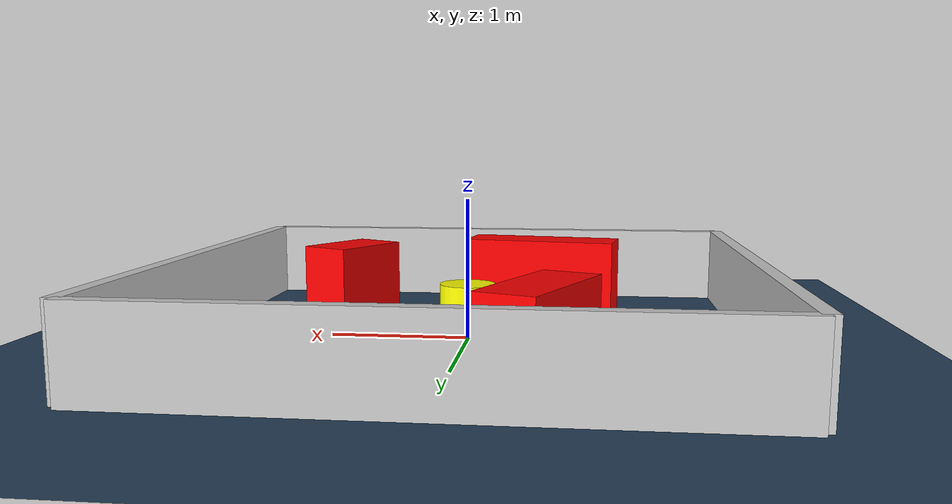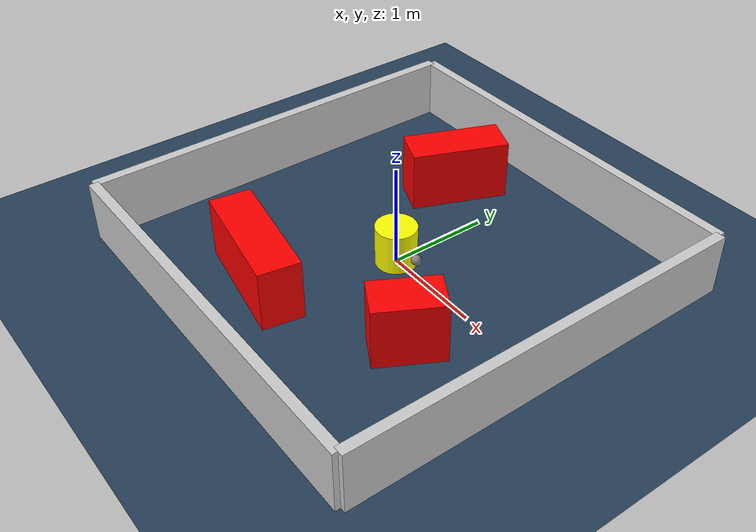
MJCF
<?xml version="1.0" ?>
<mujoco model="generated_environment">
  <option timestep="0.01" integrator="RK4" cone="elliptic"/>
  <default>
    <geom density="1"/>
  </default>
  <asset>
    <texture builtin="gradient" height="3072" rgb1="0.3 0.5 0.7" rgb2="0 0 0" type="skybox" width="512"/>
    <texture builtin="checker" height="300" mark="edge" markrgb="0.8 0.8 0.8" name="groundplane" rgb1="0.2 0.3 0.4" rgb2="0.1 0.2 0.3" type="2d" width="300"/>
    <material name="groundplane" reflectance="0.2" texrepeat="5 5" texture="groundplane" texuniform="true"/>
    <material name="robot" rgba="0.0 1.0 0.0 1"/>
  </asset>
  <worldbody>
    <light dir="0 0 -1" directional="true" pos="0 0 1.5"/>
    <geom condim="4" friction="1.0 0.005 0.001" material="groundplane" name="floor" size="0 0 0.05" type="plane"/>
    <body name="walls">
      <geom name="wall_1" condim="4" pos="-2.0 0.0 0.3" rgba="0.800000011920929 0.800000011920929 0.800000011920929 1.0" size="0.05 2.0 0.3" type="box"/>
      <geom name="wall_2" condim="4" pos="2.0 0.0 0.3" rgba="0.800000011920929 0.800000011920929 0.800000011920929 1.0" size="0.05 2.0 0.3" type="box"/>
      <geom name="wall_3" condim="4" pos="0.0 -2.0 0.3" rgba="0.800000011920929 0.800000011920929 0.800000011920929 1.0" size="2.0 0.05 0.3" type="box"/>
      <geom name="wall_4" condim="4" pos="0.0 2.0 0.3" rgba="0.800000011920929 0.800000011920929 0.800000011920929 1.0" size="2.0 0.05 0.3" type="box"/>
    </body>
    <body name="robot">
      <joint name="joint_x" type="slide" pos="0 0 0" axis="1 0 0"/>
      <joint name="joint_y" type="slide" pos="0 0 0" axis="0 1 0"/>
      <geom name="robot" type="sphere" pos="0.3 0.0 0.2" size="0.05" mass="5." friction="1.0 0.005 0.0001" condim="4" rgba="0.5 0.5 0.5 1.0"/>
      <site name="sensor_ball"/>
    </body>
    <body name="obstacle_movable_1">
      <geom name="obstacle_movable_1" condim="4" pos="0.0 0.0 0.2" euler="0 0 0.0" friction="1.0 0.005 0.001" rgba="1.0 1.0 0.0 1.0" size="0.2 0.2 0.0" type="cylinder" mass="0.1"/>
      <joint type="free"/>
    </body>
    <body name="obstacle_2_static">
      <geom name="obstacle_2_static" condim="4" pos="-0.4851760976130447 -1.1878108412536794 0.3" euler="0 0 350.2146062406834" friction="1.0 0.005 0.001" rgba="1 0 0 1" size="0.6032972710982811 0.2 0.3" type="box"/>
    </body>
    <body name="obstacle_3_static">
      <geom name="obstacle_3_static" condim="4" pos="-0.559911871161079 1.1561421006684747 0.3" euler="0 0 247.46592212712022" friction="1.0 0.005 0.001" rgba="1 0 0 1" size="0.48102442050301114 0.2 0.3" type="box"/>
    </body>
    <body name="obstacle_4_static">
      <geom name="obstacle_4_static" condim="4" pos="0.9884064261980816 -0.635868672090512 0.3" euler="0 0 240.72106913037462" friction="1.0 0.005 0.001" rgba="1 0 0 1" size="0.32513739867254904 0.2 0.3" type="box"/>
    </body>
  </worldbody>
  <actuator>
    <motor name="actuator_x" joint="joint_x" gear="1" ctrlrange="-1 1"/>
    <motor name="actuator_y" joint="joint_y" gear="1" ctrlrange="-1 1"/>
  </actuator>
</mujoco>
